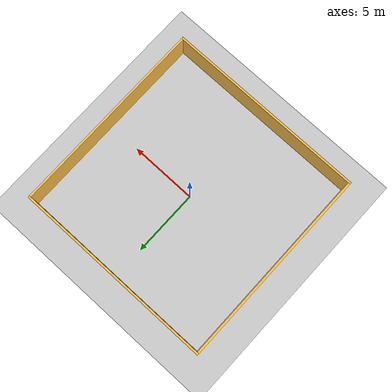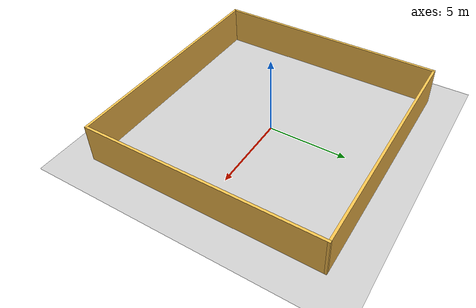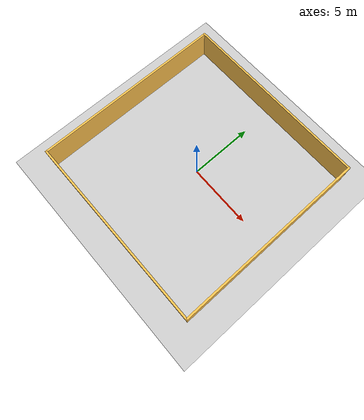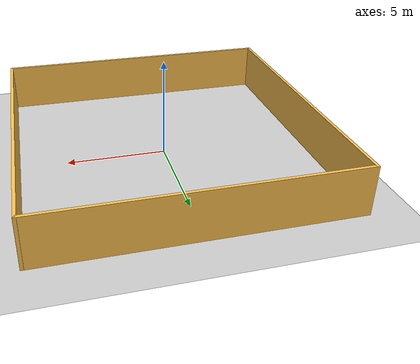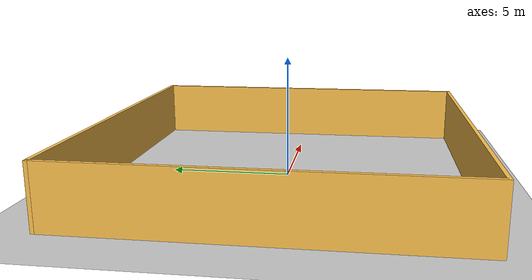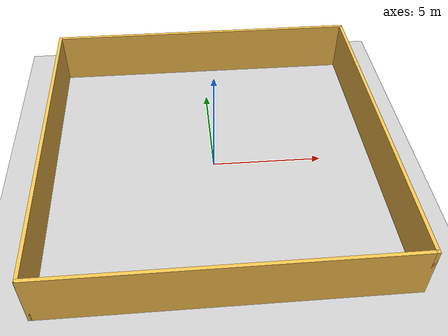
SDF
<sdf version="1.6">
 <world name="default">
  <light name="sun" type="directional">
   <pose>0 0 10 0 -0 0</pose>
   <diffuse>0.8 0.8 0.8 1</diffuse>
   <specular>0.2 0.2 0.2 1</specular>
   <attenuation>
    <range>1000</range>
    <constant>0.9</constant>
    <linear>0.01</linear>
    <quadratic>0.001</quadratic>
   </attenuation>
   <direction>-0.5 0.1 -0.9</direction>
  </light>
  <model name="ground_plane">
   <static>1</static>
   <link name="link">
    <collision name="collision">
     <geometry><plane><normal>0 0 1</normal><size>100 100</size></plane></geometry>
     <surface>
      <contact><collide_bitmask>65535</collide_bitmask></contact>
      <friction><ode><mu>100</mu><mu2>50</mu2></ode></friction>
     </surface>
    </collision>
    <visual name="visual">
     <cast_shadows>0</cast_shadows>
     <geometry><plane><normal>0 0 1</normal><size>100 100</size></plane></geometry>
     <material>
      <script><uri>file://media/materials/scripts/gazebo.material</uri><name>Gazebo/Grey</name></script>
     </material>
    </visual>
   </link>
  </model>
  <gravity>0 0 -9.8</gravity>
  <magnetic_field>6e-06 2.3e-05 -4.2e-05</magnetic_field>
  <atmosphere type="adiabatic"/>
  <physics name="default_physics" default="0" type="ode">
   <max_step_size>0.001</max_step_size>
   <real_time_factor>1</real_time_factor>
   <real_time_update_rate>1000</real_time_update_rate>
  </physics>
  <scene><ambient>0.4 0.4 0.4 1</ambient><background>0.7 0.7 0.7 1</background><shadows>1</shadows></scene>
  <spherical_coordinates>
   <surface_model>EARTH_WGS84</surface_model>
   <latitude_deg>0</latitude_deg>
   <longitude_deg>0</longitude_deg>
   <elevation>0</elevation>
   <heading_deg>0</heading_deg>
  </spherical_coordinates>
  <model name="world">
   <link name="Wall_11">
    <collision name="Wall_11_Collision">
     <geometry><box><size>15 0.15 2.5</size></box></geometry>
     <pose>0 0 1.25 0 -0 0</pose>
    </collision>
    <visual name="Wall_11_Visual">
     <pose>0 0 1.25 0 -0 0</pose>
     <geometry><box><size>15 0.15 2.5</size></box></geometry>
     <material>
      <script><uri>file://media/materials/scripts/gazebo.material</uri><name>Gazebo/Grey</name></script>
      <ambient>1 0.764706 0.305882 1</ambient>
     </material>
     <meta><layer>0</layer></meta>
    </visual>
    <pose>-7.425 0 0 0 0 -1.5708</pose>
   </link>
   <link name="Wall_12">
    <collision name="Wall_12_Collision">
     <geometry><box><size>15 0.15 2.5</size></box></geometry>
     <pose>0 0 1.25 0 -0 0</pose>
    </collision>
    <visual name="Wall_12_Visual">
     <pose>0 0 1.25 0 -0 0</pose>
     <geometry><box><size>15 0.15 2.5</size></box></geometry>
     <material>
      <script><uri>file://media/materials/scripts/gazebo.material</uri><name>Gazebo/Grey</name></script>
      <ambient>1 0.764706 0.305882 1</ambient>
     </material>
     <meta><layer>0</layer></meta>
    </visual>
    <pose>1e-06 -7.425 0 0 -0 0</pose>
   </link>
   <link name="Wall_13">
    <collision name="Wall_13_Collision">
     <geometry><box><size>15 0.15 2.5</size></box></geometry>
     <pose>0 0 1.25 0 -0 0</pose>
    </collision>
    <visual name="Wall_13_Visual">
     <pose>0 0 1.25 0 -0 0</pose>
     <geometry><box><size>15 0.15 2.5</size></box></geometry>
     <material>
      <script><uri>file://media/materials/scripts/gazebo.material</uri><name>Gazebo/Grey</name></script>
      <ambient>1 0.764706 0.305882 1</ambient>
     </material>
     <meta><layer>0</layer></meta>
    </visual>
    <pose>7.425 0 0 0 -0 1.5708</pose>
   </link>
   <link name="Wall_14">
    <collision name="Wall_14_Collision">
     <geometry><box><size>15 0.15 2.5</size></box></geometry>
     <pose>0 0 1.25 0 -0 0</pose>
    </collision>
    <visual name="Wall_14_Visual">
     <pose>0 0 1.25 0 -0 0</pose>
     <geometry><box><size>15 0.15 2.5</size></box></geometry>
     <material>
      <script><uri>file://media/materials/scripts/gazebo.material</uri><name>Gazebo/Grey</name></script>
      <ambient>1 0.764706 0.305882 1</ambient>
     </material>
     <meta><layer>0</layer></meta>
    </visual>
    <pose>1e-06 7.425 0 0 -0 3.14159</pose>
   </link>
   <static>1</static>
  </model>
  <plugin name="collision_map_creator" filename="libcollision_map_creator.so"/>
 </world>
</sdf>
